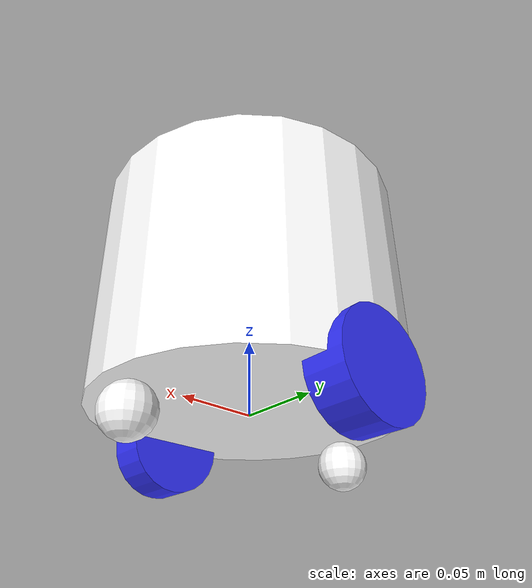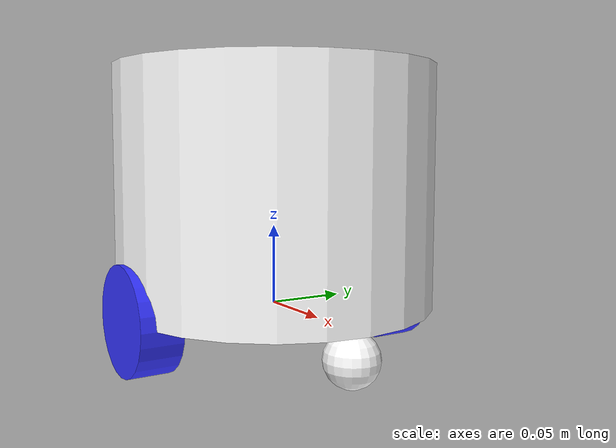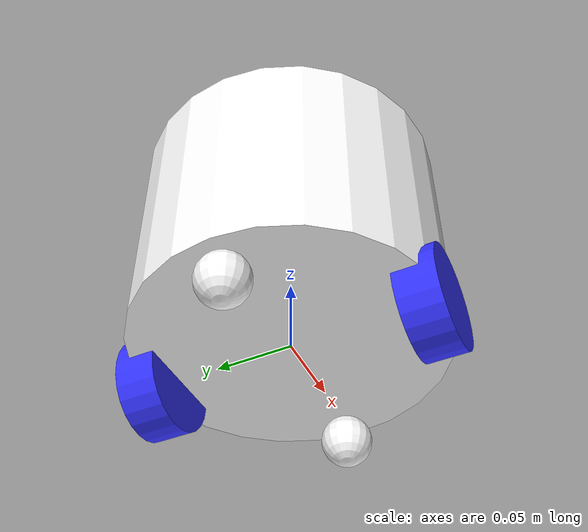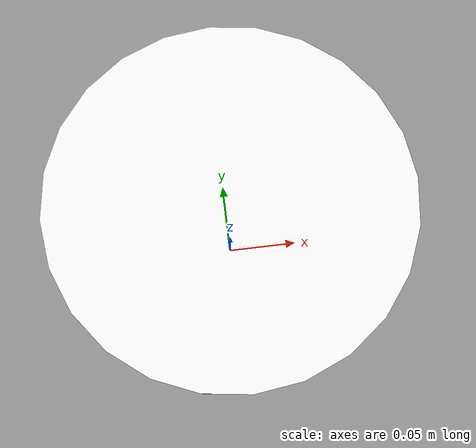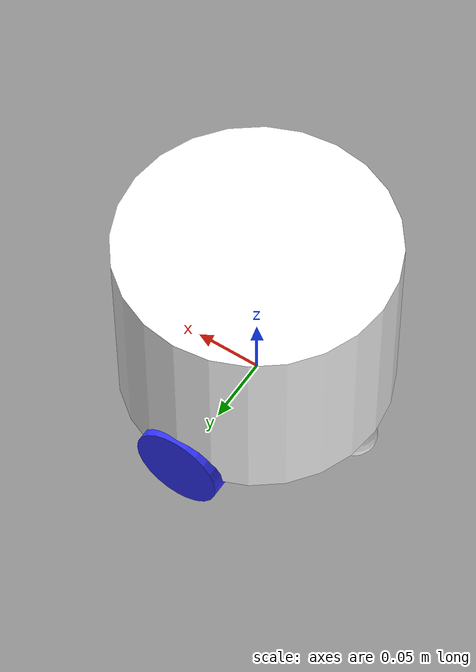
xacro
<?xml version="1.0"?>
<robot xmlns:xacro="http://www.ros.org/wiki/xacro" >

    <xacro:include filename="inertial_macros.xacro"/>

    <xacro:property name="chassis_length" value="0.335"/>
    <xacro:property name="chassis_width" value="0.265"/>
    <xacro:property name="chassis_radius" value="0.1"/>
    <xacro:property name="chassis_height" value="0.15"/>
    <xacro:property name="chassis_mass" value="1.0"/>
    <xacro:property name="wheel_radius" value="0.033"/>
    <xacro:property name="wheel_thickness" value="0.026"/>
    <xacro:property name="wheel_mass" value="0.05"/>
    <xacro:property name="wheel_offset_x" value="0"/>
    <xacro:property name="wheel_offset_y" value="0.090"/>
    <xacro:property name="caster_wheel_radius" value="0.0165"/>
    <xacro:property name="caster_wheel_mass" value="0.01"/>
    <xacro:property name="caster_wheel_offset_x" value="${chassis_radius - caster_wheel_radius}"/>
    <xacro:property name="caster_wheel_offset_z" value="-${caster_wheel_radius}"/>

    <material name="white">
        <color rgba="1 1 1 1" />
    </material>

    <material name="orange">
        <color rgba="1 0.3 0.1 1"/>
    </material>

    <material name="blue">
        <color rgba="0.2 0.2 1 1"/>
    </material>

    <material name="black">
        <color rgba="0 0 0 1"/>
    </material>

    <material name="red">
        <color rgba="1 0 0 1"/>
    </material>

    <!-- BASE LINK -->

    <link name="base_link">

    </link>

    <!-- BASE_FOOTPRINT LINK -->

    <joint name="base_footprint_joint" type="fixed">
        <parent link="base_link"/>
        <child link="base_footprint"/>
        <origin xyz="0 0 0" rpy="0 0 0"/>
    </joint>

    <link name="base_footprint">
    </link>

    <!-- CHASSIS LINK -->

    <joint name="chassis_joint" type="fixed">
        <parent link="base_link"/>
        <child link="chassis"/>
        <origin xyz="0 0 0"/>
    </joint>

    <link name="chassis">
        <visual>
            <origin xyz="0 0 ${chassis_height/2}"/>
            <geometry>
                <cylinder radius="${chassis_radius}" length="${chassis_height}"/>
            </geometry>
            <material name="white"/>
        </visual>
        <collision>
            <origin xyz="0 0 ${chassis_height/2}"/>
            <geometry>
                <cylinder radius="${chassis_radius}" length="${chassis_height}"/>
            </geometry>
        </collision>
        <xacro:inertial_cylinder mass="0.5" length="${chassis_height}" radius="${chassis_radius}">
            <origin xyz="0 0 0" rpy="0 0 0"/>
        </xacro:inertial_cylinder>
    </link>

    <gazebo reference="chassis">
        <material>Gazebo/Orange</material>
    </gazebo>

    <!-- LEFT WHEEL LINK -->

    <joint name="left_wheel_joint" type="continuous">
        <parent link="base_link"/>
        <child link="left_wheel"/>
        <origin xyz="0 ${wheel_offset_y} 0" rpy="-${pi/2} 0 0" />
        <axis xyz="0 0 1"/>
    </joint>

    <link name="left_wheel">
        <visual>
            <geometry>
                <cylinder radius="${wheel_radius}" length="${wheel_thickness}"/>
            </geometry>
            <material name="blue"/>
        </visual>
        <collision>
            <geometry>
                <sphere radius="${wheel_radius}"/>
            </geometry>
        </collision>
        <xacro:inertial_cylinder mass="${wheel_mass}" length="${wheel_thickness}" radius="${wheel_radius}">
            <origin xyz="0 0 0" rpy="0 0 0"/>
        </xacro:inertial_cylinder>
    </link>

    <gazebo reference="left_wheel">
        <material>Gazebo/Blue</material>
    </gazebo>

    <!-- RIGHT WHEEL LINK -->

    <joint name="right_wheel_joint" type="continuous">
        <parent link="base_link"/>
        <child link="right_wheel"/>
        <origin xyz="0 ${-wheel_offset_y} 0" rpy="${pi/2} 0 0" />
        <axis xyz="0 0 -1"/>
    </joint>

    <link name="right_wheel">
        <visual>
            <geometry>
                <cylinder radius="${wheel_radius}" length="${wheel_thickness}"/>
            </geometry>
            <material name="blue"/>
        </visual>
        <collision>
            <geometry>
                <sphere radius="${wheel_radius}"/>
            </geometry>
        </collision>
        <xacro:inertial_cylinder mass="${wheel_mass}" length="${wheel_thickness}" radius="${wheel_radius}">
            <origin xyz="0 0 0" rpy="0 0 0"/>
        </xacro:inertial_cylinder>
    </link>

    <gazebo reference="right_wheel">
        <material>Gazebo/Blue</material>
    </gazebo>

    <!-- CASTER WHEEL LINK -->

    <joint name="caster_wheel_joint" type="fixed">
        <parent link="chassis"/>
        <child link="caster_wheel"/>
        <origin xyz="${caster_wheel_offset_x} 0 ${caster_wheel_offset_z}"/>
    </joint>

    <link name="caster_wheel">
        <visual>
            <geometry>
                <sphere radius="${caster_wheel_radius}"/>
            </geometry>
            <material name="white"/>
        </visual>
        <collision>
            <geometry>
                <sphere radius="${caster_wheel_radius}"/>
            </geometry>
        </collision>
        <xacro:inertial_sphere mass="${caster_wheel_mass}" radius="${caster_wheel_radius}">
            <origin xyz="0 0 0" rpy="0 0 0"/>
        </xacro:inertial_sphere>
    </link>

    <gazebo reference="caster_wheel">
        <material>Gazebo/White</material>
        <mu1 value="0.001"/>
        <mu2 value="0.001"/>
    </gazebo>

    <!-- CASTER WHEE LINK -->

    <joint name="caster_whee_joint" type="fixed">
        <parent link="chassis"/>
        <child link="caster_whee"/>
        <origin xyz="-${caster_wheel_offset_x} 0 ${caster_wheel_offset_z}"/>
    </joint>

    <link name="caster_whee">
        <visual>
            <geometry>
                <sphere radius="${caster_wheel_radius}"/>
            </geometry>
            <material name="white"/>
        </visual>
        <collision>
            <geometry>
                <sphere radius="${caster_wheel_radius}"/>
            </geometry>
        </collision>
        <xacro:inertial_sphere mass="${caster_wheel_mass}" radius="${caster_wheel_radius}">
            <origin xyz="0 0 0" rpy="0 0 0"/>
        </xacro:inertial_sphere>
    </link>

    <gazebo reference="caster_whee">
        <material>Gazebo/White</material>
        <mu1 value="0.001"/>
        <mu2 value="0.001"/>
    </gazebo>

</robot>
